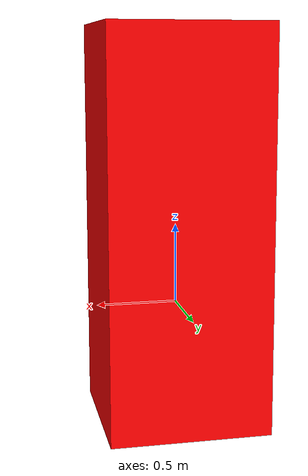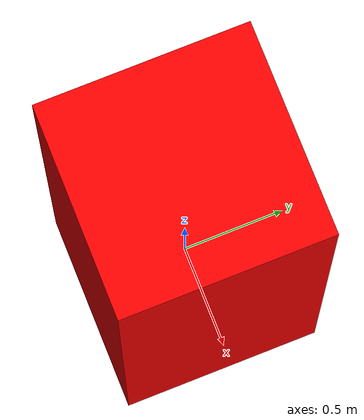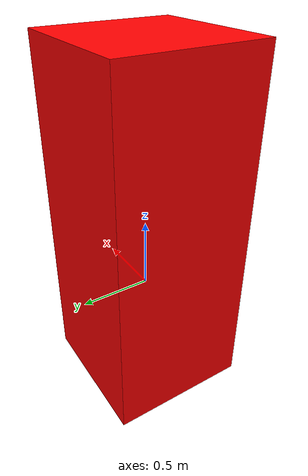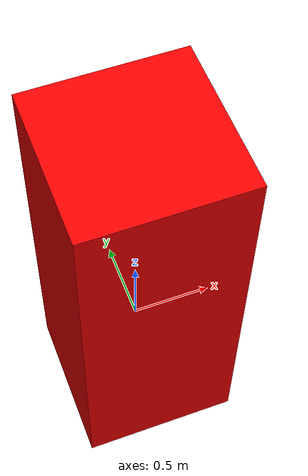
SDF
<?xml version='1.0'?>
<sdf version="1.4">
  <model name="my_box">
    <pose>0 0 0.5 0 0 0</pose>
    <static>true</static>
    <link name="link">
      <inertial>
        <mass>1.0</mass>
        <inertia> <!-- inertias are tricky to compute -->
          <!-- http://gazebosim.org/tutorials?tut=inertia&cat=build_robot -->
          <ixx>0.083</ixx>       <!-- for a box: ixx = 0.083 * mass * (y*y + z*z) -->
          <ixy>0.0</ixy>         <!-- for a box: ixy = 0 -->
          <ixz>0.0</ixz>         <!-- for a box: ixz = 0 -->
          <iyy>0.083</iyy>       <!-- for a box: iyy = 0.083 * mass * (x*x + z*z) -->
          <iyz>0.0</iyz>         <!-- for a box: iyz = 0 -->
          <izz>0.083</izz>       <!-- for a box: izz = 0.083 * mass * (x*x + y*y) -->
        </inertia>
      </inertial>
      <collision name="collision">
        <geometry>
          <box>
            <size>1 1 2.5</size>
          </box>
        </geometry>
      </collision>
      <visual name="visual">
        <geometry>
          <box>
            <size>1 1 2.5</size>
          </box>
        </geometry>
        <material>
          <ambient>1 0 0 1</ambient>
          <diffuse>1 0 0 1</diffuse>
          <specular>0.1 0.1 0.1 1</specular>
          <emissive>0 0 0 0</emissive>
        </material>
      </visual>
      <sensor name='my_contact' type='contact'>
        <contact>
          <collision>box_collision</collision>
        </contact>
      </sensor>
    </link>
  </model>
</sdf>
